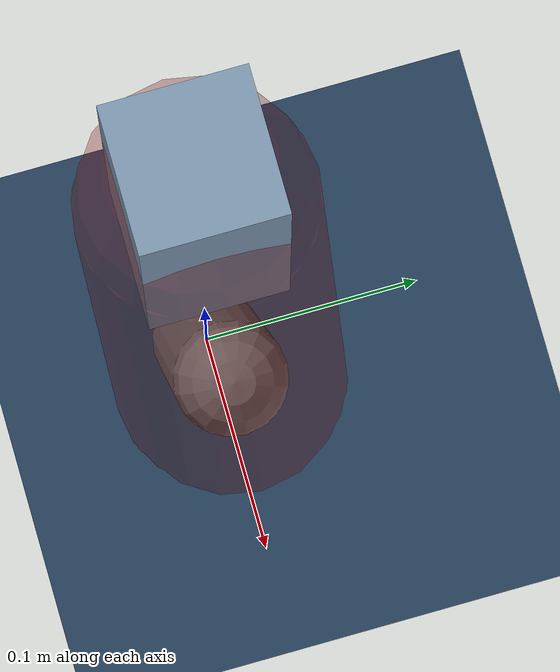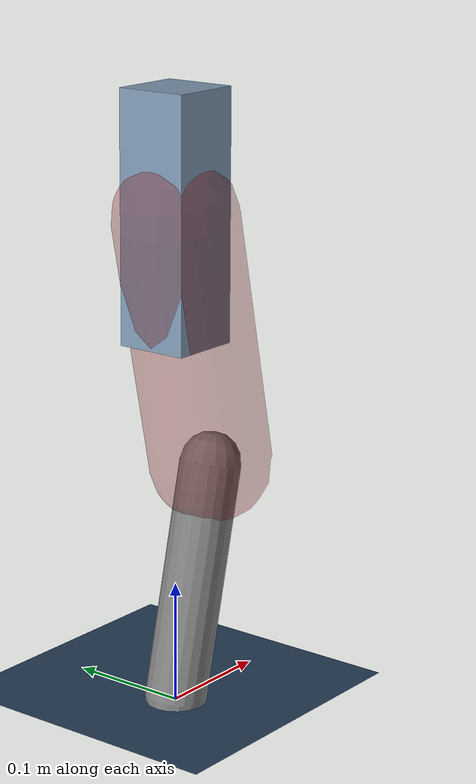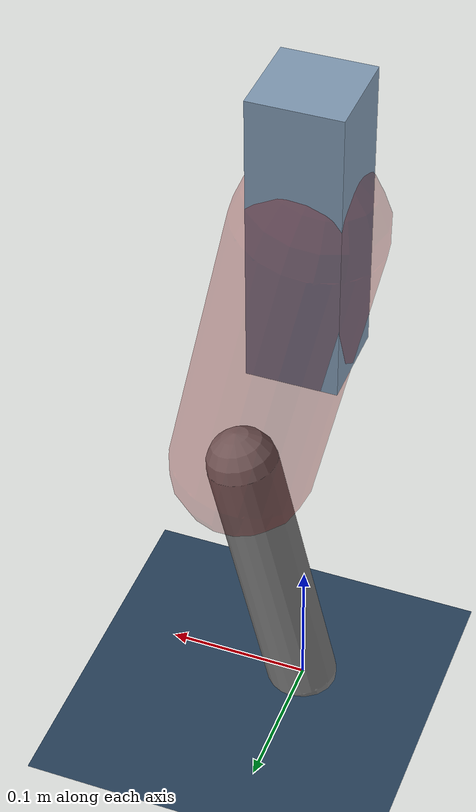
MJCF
<mujoco model="Hopper2D">
	<compiler inertiafromgeom="true" angle="radian" />
	<option timestep="0.001" integrator="implicit" cone="elliptic" solver="Newton" tolerance="1e-10" />

	<default>
		<geom contype="1" conaffinity="1" condim="3" friction="2 0.005 0.0001" solref="0.005 1" />
		<joint limited="true" damping="0.1" />
	</default>

	<asset>
		<texture name="skybox" type="skybox" builtin="gradient" rgb1=".4 .6 .8" rgb2="0 0 0" width="800" height="800" />
		<texture name="grid" type="2d" builtin="checker" rgb1=".1 .2 .3" rgb2=".2 .3 .4" width="300" height="300" mark="edge" markrgb=".2 .3 .4" />
		<material name="ground" texture="grid" texrepeat="1 1" texuniform="true" reflectance="0.1" />
		<material name="leg" rgba="0.5 0.6 0.7 1" />
	</asset>

	<worldbody>

		<geom name="floor" type="plane" size="5 5 0.25" material="ground" />

		<light directional="false" diffuse="0.8 0.8 0.8" specular="0.3 0.3 0.3" pos="0 0 2" dir="0 0 -1" />
		<light mode="targetbodycom" target="base" directional="false" diffuse="0.8 0.8 0.8" specular="0.3 0.3 0.3" pos="0 0 2" dir="0 0 -1" />

		<camera name="fixed" pos="0 -2 1" xyaxes="1 0 0 0 0 1" />
		<camera name="tracking" mode="trackcom" pos="0 -3 1" />

		<body name="root" pos="0 0 0.39907094880449345">
			<joint name="slide_x" type="slide" axis="1 0 0" range="-100 100" />
			<joint name="slide_z" type="slide" axis="0 0 1" range="0 10" />

			<body name="base" pos="0 0 0">
				<geom name="torso" type="box" size="0.03 0.03 0.1" mass="2.5149999999999997" material="leg" />

				<body name="link1" pos="0 0 0" euler="0 1.3573359949775288 0">
					<joint type="hinge" axis="0 -1 0" pos="0 0 0" name="hinge1" limited="true" range="-3.14 3.14" stiffness="0" damping="0.1" />
					<geom name="thigh" type="capsule" fromto="0 0 0 0.2120280837946277 0 0" size="0.05" rgba="0.5 0 0 0.3" mass="0.7596702094865693" />

					<body name="link2" pos="0.2120280837946277 0 0" euler="0 0.44343589532251143 0">
						<joint type="hinge" axis="0 -1 0" pos="0 0 0" name="hinge2" limited="true" range="-3.14 3.14" stiffness="0" damping="0.1" />
						<geom name="shank" type="capsule" fromto="0 0 0 0.19704286500986576 0 0" size="0.025" mass="0.3984342920078926" />

					</body>
				</body>
			</body>
		</body>
	</worldbody>

	<actuator>
		<motor name="torque1" joint="hinge1" ctrlrange="-30.798639571995487 30.798639571995487" ctrllimited="true" gear="1" />
		<motor name="torque2" joint="hinge2" ctrlrange="-81.22035803447602 81.22035803447602" ctrllimited="true" gear="1" />
	</actuator>
</mujoco>
